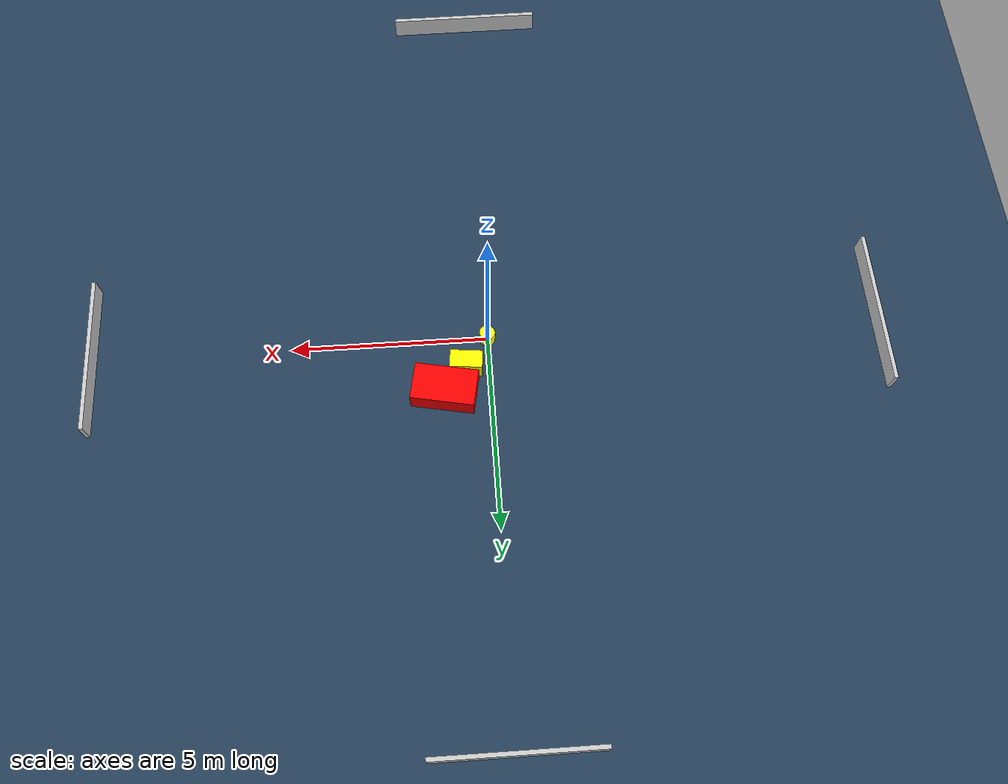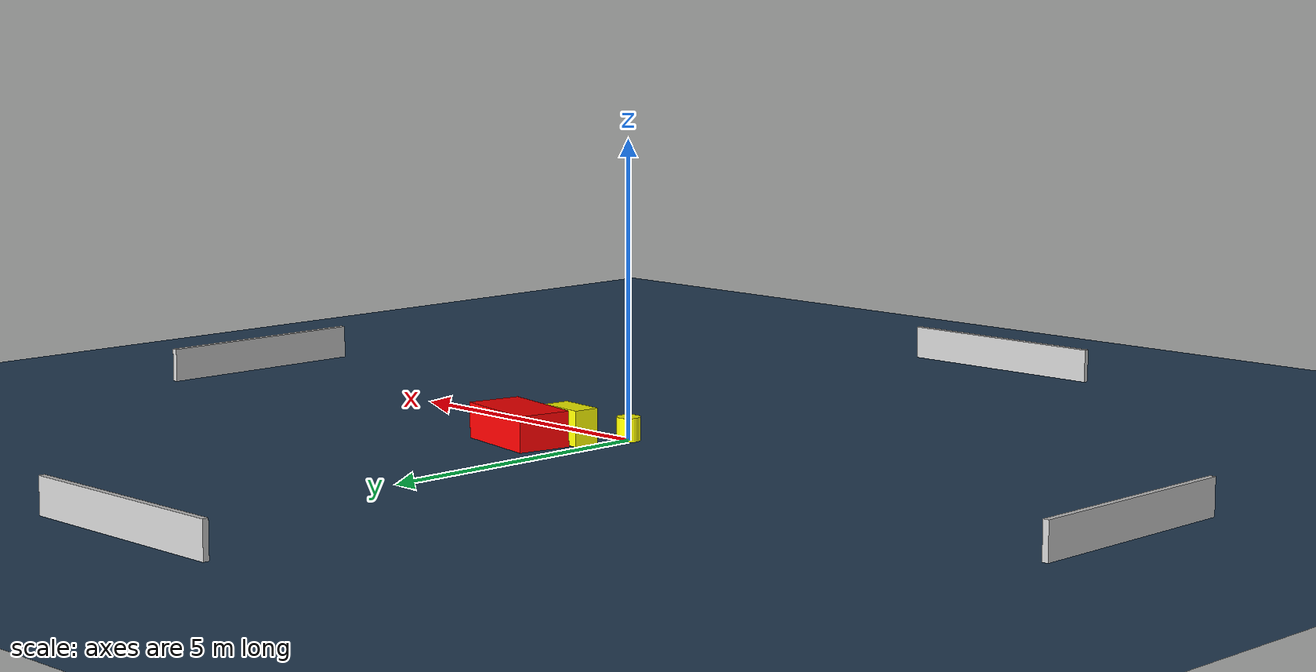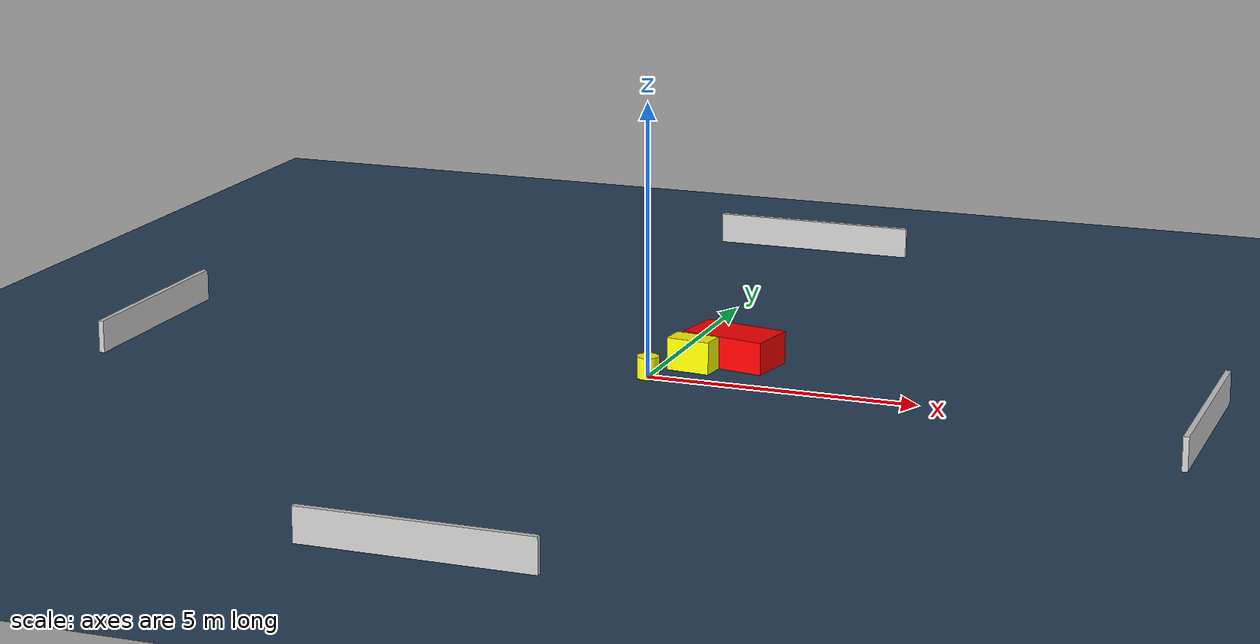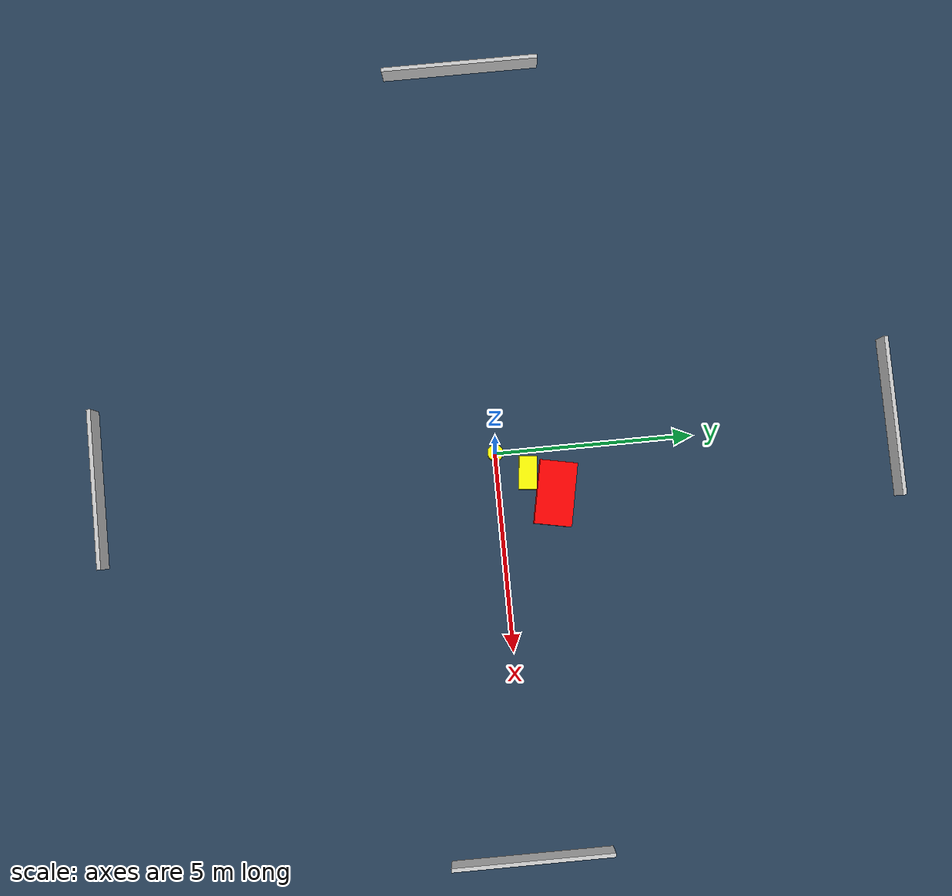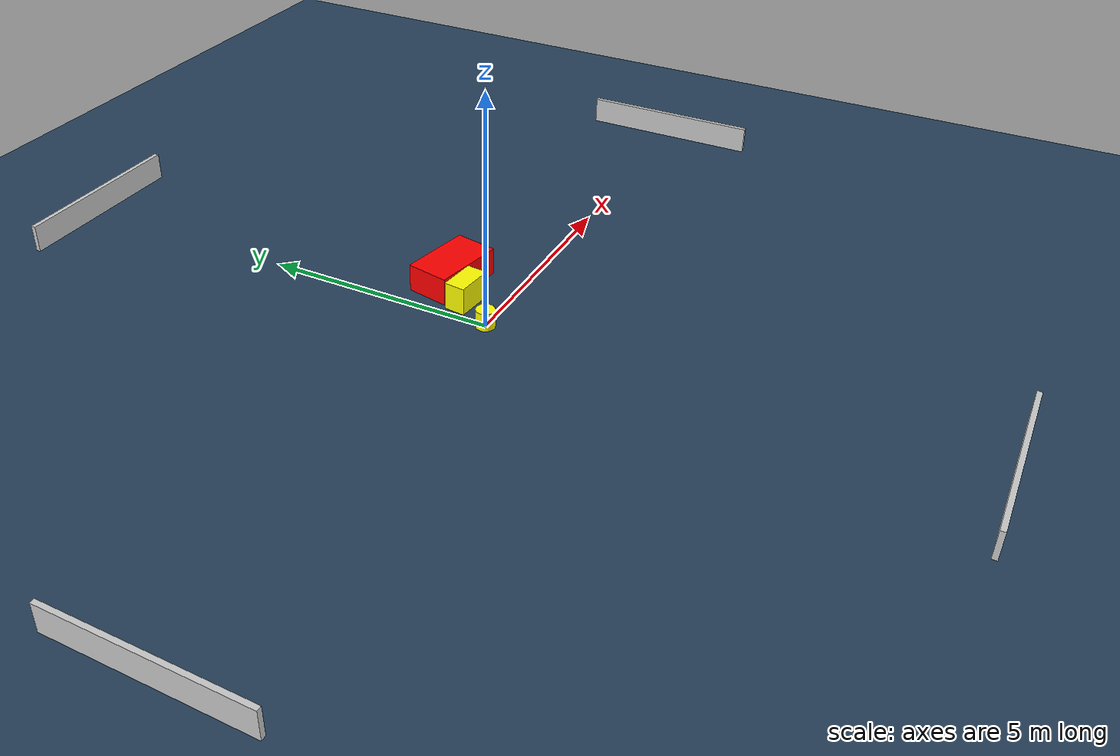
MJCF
<?xml version="1.0" ?>
<mujoco model="generated_environment">
  <option timestep="0.01" integrator="RK4" cone="elliptic"/>
  <default>
    <geom density="1"/>
  </default>
  <asset>
    <texture builtin="gradient" height="3072" name="skybox" rgb1="0.3 0.5 0.7" rgb2="0 0 0" type="skybox" width="512"/>
    <texture builtin="checker" height="300" name="groundplane" rgb1="0.2 0.3 0.4" rgb2="0.1 0.2 0.3" type="2d" width="300"/>
    <material name="groundplane" reflectance="0.2" texrepeat="5 5" texture="groundplane"/>
  </asset>
  <worldbody>
    <light dir="0 0 -1" directional="true" pos="0 0 1.5"/>
    <geom condim="3" friction="0.5 0.005 0.001" material="groundplane" name="floor" pos="0 0 0" size="0 0 0.05" type="plane"/>
    <body name="walls">
      <geom name="wall_1" condim="4" pos="-10.0 0.0 0.3" rgba="0.800000011920929 0.800000011920929 0.800000011920929 1.0" size="0.05 2.0 0.3" type="box"/>
      <geom name="wall_2" condim="4" pos="10.0 0.0 0.3" rgba="0.800000011920929 0.800000011920929 0.800000011920929 1.0" size="0.05 2.0 0.3" type="box"/>
      <geom name="wall_3" condim="4" pos="0.0 -10.0 0.3" rgba="0.800000011920929 0.800000011920929 0.800000011920929 1.0" size="2.0 0.05 0.3" type="box"/>
      <geom name="wall_4" condim="4" pos="0.0 10.0 0.3" rgba="0.800000011920929 0.800000011920929 0.800000011920929 1.0" size="2.0 0.05 0.3" type="box"/>
    </body>
    <body name="robot">
      <joint name="joint_x" type="slide" pos="0 0 0" axis="1 0 0"/>
      <joint name="joint_y" type="slide" pos="0 0 0" axis="0 1 0"/>
      <geom name="robot" type="cylinder" pos="0.0 0.0 0.2" size="0.2 0.2 0.0" mass="5.0" friction="1.0 0.005 0.0001" condim="4" rgba="1.0 1.0 0.0 1.0"/>
    </body>
    <body name="obstacle_1_movable">
      <geom name="obstacle_1_movable" condim="4" pos="0.5775689267612627 0.7578183424282218 0.3" euler="0 0 173.96325211344742" friction="0.0 0.005 0.001" rgba="1.0 1.0 0.0 1.0" size="0.41142601952952274 0.2253182214133532 0.3" type="box" mass="0.1"/>
      <joint type="free"/>
    </body>
    <body name="obstacle_2_static">
      <geom name="obstacle_2_static" condim="4" pos="1.1544830647087458 1.4004280579020247 0.3" euler="0 0 168.9960518134469" friction="0.0 0.005 0.001" rgba="1.0 0.0 0.0 1.0" size="0.7970302229324258 0.4675372137400944 0.3" type="box"/>
    </body>
  </worldbody>
  <actuator>
    <motor name="actuator_x" joint="joint_x" gear="1" ctrlrange="-1 1"/>
    <motor name="actuator_y" joint="joint_y" gear="1" ctrlrange="-1 1"/>
  </actuator>
</mujoco>
